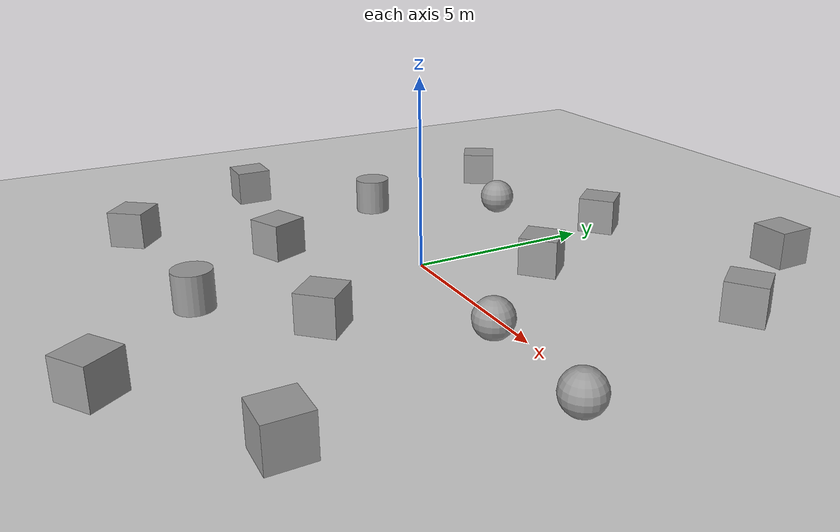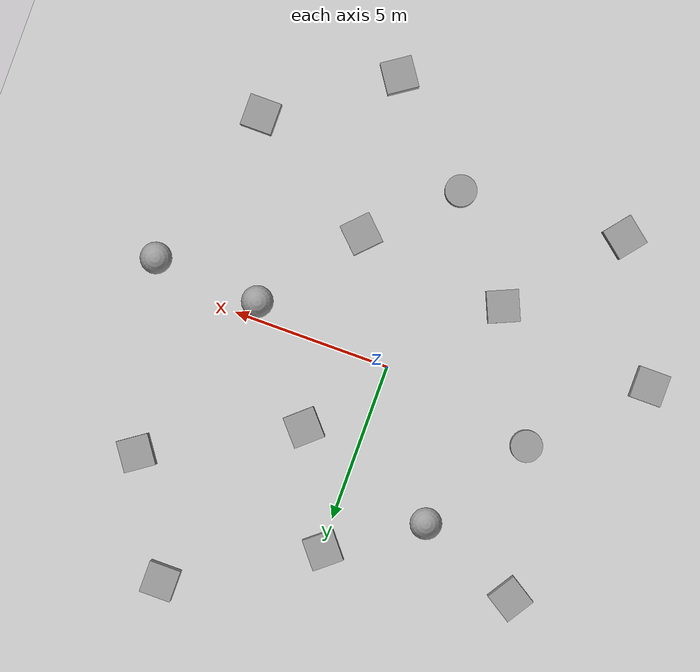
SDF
<sdf version="1.6">
 <world name="default">
  <light name="sun" type="directional">
   <pose>0 0 10 0 -0 0</pose>
   <diffuse>0.8 0.8 0.8 1</diffuse>
   <specular>0.1 0.1 0.1 1</specular>
   <attenuation>
    <range>1000</range>
    <constant>0.9</constant>
    <linear>0.01</linear>
    <quadratic>0.001</quadratic>
   </attenuation>
   <direction>-0.5 0.5 -1</direction>
  </light>
  <model name="ground_plane">
   <static>1</static>
   <link name="link">
    <collision name="collision">
     <geometry><plane><normal>0 0 1</normal><size>100 100</size></plane></geometry>
     <surface><friction><ode><mu>100</mu><mu2>50</mu2></ode></friction></surface>
    </collision>
    <visual name="visual">
     <cast_shadows>0</cast_shadows>
     <geometry><plane><normal>0 0 1</normal><size>100 100</size></plane></geometry>
     <material>
      <script><uri>file://media/materials/scripts/gazebo.material</uri><name>Gazebo/Grey</name></script>
     </material>
    </visual>
   </link>
  </model>
  <gravity>0 0 -9.8</gravity>
  <magnetic_field>6e-06 2.3e-05 -4.2e-05</magnetic_field>
  <atmosphere type="adiabatic"/>
  <physics name="default_physics" default="0" type="ode">
   <max_step_size>0.001</max_step_size>
   <real_time_factor>1</real_time_factor>
   <real_time_update_rate>1000</real_time_update_rate>
  </physics>
  <scene><ambient>0.4 0.4 0.4 1</ambient><background>0.7 0.7 0.7 1</background><shadows>1</shadows></scene>
  <spherical_coordinates>
   <surface_model>EARTH_WGS84</surface_model>
   <latitude_deg>0</latitude_deg>
   <longitude_deg>0</longitude_deg>
   <elevation>0</elevation>
   <heading_deg>0</heading_deg>
  </spherical_coordinates>
  <model name="unit_box_0_0">
   <pose>-2.7127 -2.98657 0.499995 -1e-05 -0 0.410568</pose>
   <link name="link">
    <inertial>
     <mass>1</mass>
     <inertia>
      <ixx>0.166667</ixx>
      <ixy>0</ixy>
      <ixz>0</ixz>
      <iyy>0.166667</iyy>
      <iyz>0</iyz>
      <izz>0.166667</izz>
     </inertia>
    </inertial>
    <collision name="collision"><geometry><box><size>1 1 1</size></box></geometry></collision>
    <visual name="visual">
     <geometry><box><size>1 1 1</size></box></geometry>
     <material>
      <script><name>Gazebo/Grey</name><uri>file://media/materials/scripts/gazebo.material</uri></script>
     </material>
    </visual>
   </link>
  </model>
  <model name="unit_sphere_0">
   <pose>-2.76951 4.12613 0.5 0 -0 0</pose>
   <link name="link">
    <inertial>
     <mass>1</mass>
     <inertia><ixx>0.1</ixx><ixy>0</ixy><ixz>0</ixz><iyy>0.1</iyy><iyz>0</iyz><izz>0.1</izz></inertia>
    </inertial>
    <collision name="collision"><geometry><sphere><radius>0.5</radius></sphere></geometry></collision>
    <visual name="visual">
     <geometry><sphere><radius>0.5</radius></sphere></geometry>
     <material>
      <script><name>Gazebo/Grey</name><uri>file://media/materials/scripts/gazebo.material</uri></script>
     </material>
    </visual>
   </link>
  </model>
  <model name="unit_box_0_1">
   <pose>1.78089 2.61433 0.5 0 0 -0.850108</pose>
   <link name="link">
    <inertial>
     <mass>1</mass>
     <inertia>
      <ixx>0.166667</ixx>
      <ixy>0</ixy>
      <ixz>0</ixz>
      <iyy>0.166667</iyy>
      <iyz>0</iyz>
      <izz>0.166667</izz>
     </inertia>
    </inertial>
    <collision name="collision"><geometry><box><size>1 1 1</size></box></geometry></collision>
    <visual name="visual">
     <geometry><box><size>1 1 1</size></box></geometry>
     <material>
      <script><name>Gazebo/Grey</name><uri>file://media/materials/scripts/gazebo.material</uri></script>
     </material>
    </visual>
   </link>
  </model>
  <model name="unit_box_0_2">
   <pose>-5.50891 -6.26457 0.5 0 0 -0.676946</pose>
   <link name="link">
    <inertial>
     <mass>1</mass>
     <inertia>
      <ixx>0.166667</ixx>
      <ixy>0</ixy>
      <ixz>0</ixz>
      <iyy>0.166667</iyy>
      <iyz>0</iyz>
      <izz>0.166667</izz>
     </inertia>
    </inertial>
    <collision name="collision"><geometry><box><size>1 1 1</size></box></geometry></collision>
    <visual name="visual">
     <geometry><box><size>1 1 1</size></box></geometry>
     <material>
      <script><name>Gazebo/Grey</name><uri>file://media/materials/scripts/gazebo.material</uri></script>
     </material>
    </visual>
   </link>
  </model>
  <model name="unit_sphere_2">
   <pose>4.46429 -0.540808 0.5 0 -0 0</pose>
   <link name="link">
    <inertial>
     <mass>1</mass>
     <inertia><ixx>0.1</ixx><ixy>0</ixy><ixz>0</ixz><iyy>0.1</iyy><iyz>0</iyz><izz>0.1</izz></inertia>
    </inertial>
    <collision name="collision"><geometry><sphere><radius>0.5</radius></sphere></geometry></collision>
    <visual name="visual">
     <geometry><sphere><radius>0.5</radius></sphere></geometry>
     <material>
      <script><name>Gazebo/Grey</name><uri>file://media/materials/scripts/gazebo.material</uri></script>
     </material>
    </visual>
   </link>
  </model>
  <model name="unit_cylinder_1">
   <pose>-0.275511 -5.88605 0.499998 3e-06 -2e-06 0</pose>
   <link name="link">
    <inertial>
     <mass>1</mass>
     <inertia><ixx>0.145833</ixx><ixy>0</ixy><ixz>0</ixz><iyy>0.145833</iyy><iyz>0</iyz><izz>0.125</izz></inertia>
    </inertial>
    <collision name="collision">
     <geometry><cylinder><radius>0.5</radius><length>1</length></cylinder></geometry>
    </collision>
    <visual name="visual">
     <geometry><cylinder><radius>0.5</radius><length>1</length></cylinder></geometry>
     <material>
      <script><name>Gazebo/Grey</name><uri>file://media/materials/scripts/gazebo.material</uri></script>
     </material>
    </visual>
   </link>
  </model>
  <model name="unit_box_0_3">
   <pose>-0.057876 5.96913 0.5 0 -0 0.68992</pose>
   <link name="link">
    <inertial>
     <mass>1</mass>
     <inertia>
      <ixx>0.166667</ixx>
      <ixy>0</ixy>
      <ixz>0</ixz>
      <iyy>0.166667</iyy>
      <iyz>0</iyz>
      <izz>0.166667</izz>
     </inertia>
    </inertial>
    <collision name="collision"><geometry><box><size>1 1 1</size></box></geometry></collision>
    <visual name="visual">
     <geometry><box><size>1 1 1</size></box></geometry>
     <material>
      <script><name>Gazebo/Grey</name><uri>file://media/materials/scripts/gazebo.material</uri></script>
     </material>
    </visual>
   </link>
  </model>
  <model name="unit_box_0_4">
   <pose>-6.00174 5.40957 0.499999 5e-06 4e-06 -0.5639</pose>
   <link name="link">
    <inertial>
     <mass>1</mass>
     <inertia>
      <ixx>0.166667</ixx>
      <ixy>0</ixy>
      <ixz>0</ixz>
      <iyy>0.166667</iyy>
      <iyz>0</iyz>
      <izz>0.166667</izz>
     </inertia>
    </inertial>
    <collision name="collision"><geometry><box><size>1 1 1</size></box></geometry></collision>
    <visual name="visual">
     <geometry><box><size>1 1 1</size></box></geometry>
     <material>
      <script><name>Gazebo/Grey</name><uri>file://media/materials/scripts/gazebo.material</uri></script>
     </material>
    </visual>
   </link>
  </model>
  <model name="unit_box_0_5">
   <pose>-7.8047 -2.209 0.499995 1e-05 -0 0</pose>
   <link name="link">
    <inertial>
     <mass>1</mass>
     <inertia>
      <ixx>0.166667</ixx>
      <ixy>0</ixy>
      <ixz>0</ixz>
      <iyy>0.166667</iyy>
      <iyz>0</iyz>
      <izz>0.166667</izz>
     </inertia>
    </inertial>
    <collision name="collision"><geometry><box><size>1 1 1</size></box></geometry></collision>
    <visual name="visual">
     <geometry><box><size>1 1 1</size></box></geometry>
     <material>
      <script><name>Gazebo/Grey</name><uri>file://media/materials/scripts/gazebo.material</uri></script>
     </material>
    </visual>
   </link>
  </model>
  <model name="unit_box_0_6">
   <pose>6.36977 5.12059 0.5 0 -0 0.608992</pose>
   <link name="link">
    <inertial>
     <mass>1</mass>
     <inertia>
      <ixx>0.166667</ixx>
      <ixy>0</ixy>
      <ixz>0</ixz>
      <iyy>0.166667</iyy>
      <iyz>0</iyz>
      <izz>0.166667</izz>
     </inertia>
    </inertial>
    <collision name="collision"><geometry><box><size>1 1 1</size></box></geometry></collision>
    <visual name="visual">
     <geometry><box><size>1 1 1</size></box></geometry>
     <material>
      <script><name>Gazebo/Grey</name><uri>file://media/materials/scripts/gazebo.material</uri></script>
     </material>
    </visual>
   </link>
  </model>
  <model name="unit_box_0_7">
   <pose>2.72111 -8.58594 0.5 0 -0 0.593953</pose>
   <link name="link">
    <inertial>
     <mass>1</mass>
     <inertia>
      <ixx>0.166667</ixx>
      <ixy>0</ixy>
      <ixz>0</ixz>
      <iyy>0.166667</iyy>
      <iyz>0</iyz>
      <izz>0.166667</izz>
     </inertia>
    </inertial>
    <collision name="collision"><geometry><box><size>1 1 1</size></box></geometry></collision>
    <visual name="visual">
     <geometry><box><size>1 1 1</size></box></geometry>
     <material>
      <script><name>Gazebo/Grey</name><uri>file://media/materials/scripts/gazebo.material</uri></script>
     </material>
    </visual>
   </link>
  </model>
  <model name="unit_cylinder_2">
   <pose>-4.85851 0.817988 0.499998 3e-06 -3e-06 0</pose>
   <link name="link">
    <inertial>
     <mass>1</mass>
     <inertia><ixx>0.145833</ixx><ixy>0</ixy><ixz>0</ixz><iyy>0.145833</iyy><iyz>0</iyz><izz>0.125</izz></inertia>
    </inertial>
    <collision name="collision">
     <geometry><cylinder><radius>0.5</radius><length>1</length></cylinder></geometry>
    </collision>
    <visual name="visual">
     <geometry><cylinder><radius>0.5</radius><length>1</length></cylinder></geometry>
     <material>
      <script><name>Gazebo/Grey</name><uri>file://media/materials/scripts/gazebo.material</uri></script>
     </material>
    </visual>
   </link>
  </model>
  <model name="unit_box_0_8">
   <pose>2.15364 -3.59098 0.5 0 -0 0.798361</pose>
   <link name="link">
    <inertial>
     <mass>1</mass>
     <inertia>
      <ixx>0.166667</ixx>
      <ixy>0</ixy>
      <ixz>0</ixz>
      <iyy>0.166667</iyy>
      <iyz>0</iyz>
      <izz>0.166667</izz>
     </inertia>
    </inertial>
    <collision name="collision"><geometry><box><size>1 1 1</size></box></geometry></collision>
    <visual name="visual">
     <geometry><box><size>1 1 1</size></box></geometry>
     <material>
      <script><name>Gazebo/Grey</name><uri>file://media/materials/scripts/gazebo.material</uri></script>
     </material>
    </visual>
   </link>
  </model>
  <model name="unit_box_0_9">
   <pose>6.3197 -5.9938 0.499995 0 1e-05 0</pose>
   <link name="link">
    <inertial>
     <mass>1</mass>
     <inertia>
      <ixx>0.166667</ixx>
      <ixy>0</ixy>
      <ixz>0</ixz>
      <iyy>0.166667</iyy>
      <iyz>0</iyz>
      <izz>0.166667</izz>
     </inertia>
    </inertial>
    <collision name="collision"><geometry><box><size>1 1 1</size></box></geometry></collision>
    <visual name="visual">
     <geometry><box><size>1 1 1</size></box></geometry>
     <material>
      <script><name>Gazebo/Grey</name><uri>file://media/materials/scripts/gazebo.material</uri></script>
     </material>
    </visual>
   </link>
  </model>
  <model name="unit_sphere_1_0">
   <pose>7.86445 -0.736206 0.5 0 -0 0</pose>
   <link name="link">
    <inertial>
     <mass>1</mass>
     <inertia><ixx>0.1</ixx><ixy>0</ixy><ixz>0</ixz><iyy>0.1</iyy><iyz>0</iyz><izz>0.1</izz></inertia>
    </inertial>
    <collision name="collision"><geometry><sphere><radius>0.5</radius></sphere></geometry></collision>
    <visual name="visual">
     <geometry><sphere><radius>0.5</radius></sphere></geometry>
     <material>
      <script><name>Gazebo/Grey</name><uri>file://media/materials/scripts/gazebo.material</uri></script>
     </material>
    </visual>
   </link>
  </model>
  <model name="unit_box_0_10">
   <pose>4.32768 8.57402 0.5 0 -0 0</pose>
   <link name="link">
    <inertial>
     <mass>1</mass>
     <inertia>
      <ixx>0.166667</ixx>
      <ixy>0</ixy>
      <ixz>0</ixz>
      <iyy>0.166667</iyy>
      <iyz>0</iyz>
      <izz>0.166667</izz>
     </inertia>
    </inertial>
    <collision name="collision"><geometry><box><size>1 1 1</size></box></geometry></collision>
    <visual name="visual">
     <geometry><box><size>1 1 1</size></box></geometry>
     <material>
      <script><name>Gazebo/Grey</name><uri>file://media/materials/scripts/gazebo.material</uri></script>
     </material>
    </visual>
   </link>
  </model>
 </world>
</sdf>
